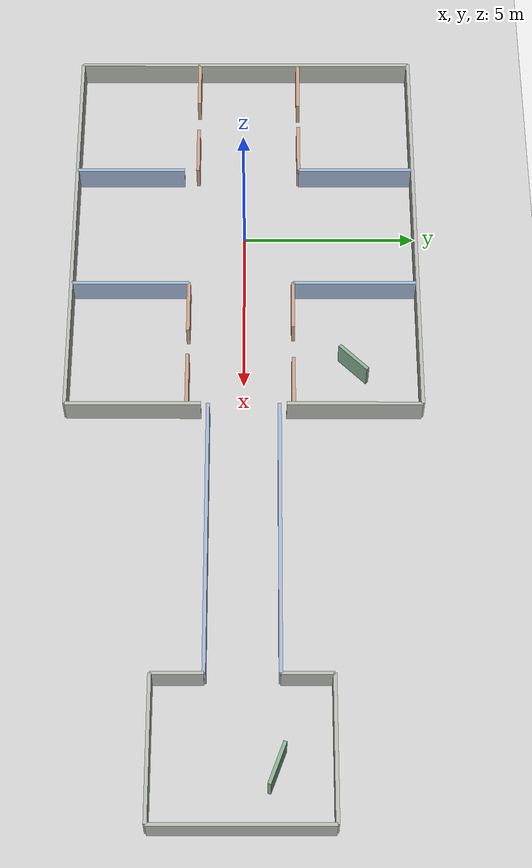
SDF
<?xml version="1.0" ?>
<sdf version="1.6">
  <world name="default">
    <gui>
      <camera name="user_camera">
        <pose>4 -15 16 0 0.9 1.5708</pose>
      </camera>
    </gui>

    <scene>
      <ambient>0.65 0.65 0.65 1</ambient>
      <background>0.55 0.58 0.62 1</background>
      <shadows>1</shadows>
      <grid>0</grid>
      <origin_visual>0</origin_visual>
    </scene>

    <include>
      <uri>model://ground_plane</uri>
    </include>

    <include>
      <uri>model://sun</uri>
    </include>

    <!-- Variant of slam_rooms with an east-side corridor and a small room at the end. -->
    <model name="slam_rooms_corridor_walls">
      <static>true</static>

      <link name="north_wall">
        <pose>0 5 0.4 0 0 0</pose>
        <collision name="collision"><geometry><box><size>12 0.1 0.8</size></box></geometry></collision>
        <visual name="visual"><geometry><box><size>12 0.1 0.8</size></box></geometry><material><ambient>0.70 0.72 0.68 1</ambient><diffuse>0.70 0.72 0.68 1</diffuse></material></visual>
      </link>
      <link name="south_wall">
        <pose>0 -5 0.4 0 0 0</pose>
        <collision name="collision"><geometry><box><size>12 0.1 0.8</size></box></geometry></collision>
        <visual name="visual"><geometry><box><size>12 0.1 0.8</size></box></geometry><material><ambient>0.70 0.72 0.68 1</ambient><diffuse>0.70 0.72 0.68 1</diffuse></material></visual>
      </link>
      <link name="east_wall_top">
        <pose>6 3.1 0.4 0 0 1.5708</pose>
        <collision name="collision"><geometry><box><size>3.8 0.1 0.8</size></box></geometry></collision>
        <visual name="visual"><geometry><box><size>3.8 0.1 0.8</size></box></geometry><material><ambient>0.70 0.72 0.68 1</ambient><diffuse>0.70 0.72 0.68 1</diffuse></material></visual>
      </link>
      <link name="east_wall_bottom">
        <pose>6 -3.1 0.4 0 0 1.5708</pose>
        <collision name="collision"><geometry><box><size>3.8 0.1 0.8</size></box></geometry></collision>
        <visual name="visual"><geometry><box><size>3.8 0.1 0.8</size></box></geometry><material><ambient>0.70 0.72 0.68 1</ambient><diffuse>0.70 0.72 0.68 1</diffuse></material></visual>
      </link>
      <link name="west_wall">
        <pose>-6 0 0.4 0 0 1.5708</pose>
        <collision name="collision"><geometry><box><size>10 0.1 0.8</size></box></geometry></collision>
        <visual name="visual"><geometry><box><size>10 0.1 0.8</size></box></geometry><material><ambient>0.70 0.72 0.68 1</ambient><diffuse>0.70 0.72 0.68 1</diffuse></material></visual>
      </link>

      <link name="left_vertical_top">
        <pose>-2 3.3 0.4 0 0 1.5708</pose>
        <collision name="collision"><geometry><box><size>3.4 0.1 0.8</size></box></geometry></collision>
        <visual name="visual"><geometry><box><size>3.4 0.1 0.8</size></box></geometry><material><ambient>0.62 0.70 0.82 1</ambient><diffuse>0.62 0.70 0.82 1</diffuse></material></visual>
      </link>
      <link name="left_vertical_bottom">
        <pose>-2 -3.4 0.4 0 0 1.5708</pose>
        <collision name="collision"><geometry><box><size>3.2 0.1 0.8</size></box></geometry></collision>
        <visual name="visual"><geometry><box><size>3.2 0.1 0.8</size></box></geometry><material><ambient>0.62 0.70 0.82 1</ambient><diffuse>0.62 0.70 0.82 1</diffuse></material></visual>
      </link>
      <link name="right_vertical_top">
        <pose>2 3.2 0.4 0 0 1.5708</pose>
        <collision name="collision"><geometry><box><size>3.6 0.1 0.8</size></box></geometry></collision>
        <visual name="visual"><geometry><box><size>3.6 0.1 0.8</size></box></geometry><material><ambient>0.62 0.70 0.82 1</ambient><diffuse>0.62 0.70 0.82 1</diffuse></material></visual>
      </link>
      <link name="right_vertical_bottom">
        <pose>2 -3.3 0.4 0 0 1.5708</pose>
        <collision name="collision"><geometry><box><size>3.4 0.1 0.8</size></box></geometry></collision>
        <visual name="visual"><geometry><box><size>3.4 0.1 0.8</size></box></geometry><material><ambient>0.62 0.70 0.82 1</ambient><diffuse>0.62 0.70 0.82 1</diffuse></material></visual>
      </link>

      <link name="upper_left_partition_west">
        <pose>-5.2 1.6 0.4 0 0 0</pose>
        <collision name="collision"><geometry><box><size>1.6 0.1 0.8</size></box></geometry></collision>
        <visual name="visual"><geometry><box><size>1.6 0.1 0.8</size></box></geometry><material><ambient>0.78 0.62 0.52 1</ambient><diffuse>0.78 0.62 0.52 1</diffuse></material></visual>
      </link>
      <link name="upper_left_partition_east">
        <pose>-2.8 1.6 0.4 0 0 0</pose>
        <collision name="collision"><geometry><box><size>1.6 0.1 0.8</size></box></geometry></collision>
        <visual name="visual"><geometry><box><size>1.6 0.1 0.8</size></box></geometry><material><ambient>0.78 0.62 0.52 1</ambient><diffuse>0.78 0.62 0.52 1</diffuse></material></visual>
      </link>
      <link name="lower_left_partition_west">
        <pose>-5.25 -1.4 0.4 0 0 0</pose>
        <collision name="collision"><geometry><box><size>1.5 0.1 0.8</size></box></geometry></collision>
        <visual name="visual"><geometry><box><size>1.5 0.1 0.8</size></box></geometry><material><ambient>0.78 0.62 0.52 1</ambient><diffuse>0.78 0.62 0.52 1</diffuse></material></visual>
      </link>
      <link name="lower_left_partition_east">
        <pose>-2.75 -1.4 0.4 0 0 0</pose>
        <collision name="collision"><geometry><box><size>1.5 0.1 0.8</size></box></geometry></collision>
        <visual name="visual"><geometry><box><size>1.5 0.1 0.8</size></box></geometry><material><ambient>0.78 0.62 0.52 1</ambient><diffuse>0.78 0.62 0.52 1</diffuse></material></visual>
      </link>
      <link name="upper_right_partition_west">
        <pose>2.75 1.4 0.4 0 0 0</pose>
        <collision name="collision"><geometry><box><size>1.5 0.1 0.8</size></box></geometry></collision>
        <visual name="visual"><geometry><box><size>1.5 0.1 0.8</size></box></geometry><material><ambient>0.78 0.62 0.52 1</ambient><diffuse>0.78 0.62 0.52 1</diffuse></material></visual>
      </link>
      <link name="upper_right_partition_east">
        <pose>5.25 1.4 0.4 0 0 0</pose>
        <collision name="collision"><geometry><box><size>1.5 0.1 0.8</size></box></geometry></collision>
        <visual name="visual"><geometry><box><size>1.5 0.1 0.8</size></box></geometry><material><ambient>0.78 0.62 0.52 1</ambient><diffuse>0.78 0.62 0.52 1</diffuse></material></visual>
      </link>
      <link name="lower_right_partition_west">
        <pose>2.8 -1.6 0.4 0 0 0</pose>
        <collision name="collision"><geometry><box><size>1.6 0.1 0.8</size></box></geometry></collision>
        <visual name="visual"><geometry><box><size>1.6 0.1 0.8</size></box></geometry><material><ambient>0.78 0.62 0.52 1</ambient><diffuse>0.78 0.62 0.52 1</diffuse></material></visual>
      </link>
      <link name="lower_right_partition_east">
        <pose>5.2 -1.6 0.4 0 0 0</pose>
        <collision name="collision"><geometry><box><size>1.6 0.1 0.8</size></box></geometry></collision>
        <visual name="visual"><geometry><box><size>1.6 0.1 0.8</size></box></geometry><material><ambient>0.78 0.62 0.52 1</ambient><diffuse>0.78 0.62 0.52 1</diffuse></material></visual>
      </link>

      <link name="short_landmark">
        <pose>4.5 3.1 0.4 0 0 0.7854</pose>
        <collision name="collision"><geometry><box><size>1.1 0.1 0.8</size></box></geometry></collision>
        <visual name="visual"><geometry><box><size>1.1 0.1 0.8</size></box></geometry><material><ambient>0.52 0.68 0.56 1</ambient><diffuse>0.52 0.68 0.56 1</diffuse></material></visual>
      </link>

      <link name="corridor_north_wall">
        <pose>10 1 0.4 0 0 0</pose>
        <collision name="collision"><geometry><box><size>8 0.1 0.8</size></box></geometry></collision>
        <visual name="visual"><geometry><box><size>8 0.1 0.8</size></box></geometry><material><ambient>0.62 0.70 0.82 1</ambient><diffuse>0.62 0.70 0.82 1</diffuse></material></visual>
      </link>
      <link name="corridor_south_wall">
        <pose>10 -1 0.4 0 0 0</pose>
        <collision name="collision"><geometry><box><size>8 0.1 0.8</size></box></geometry></collision>
        <visual name="visual"><geometry><box><size>8 0.1 0.8</size></box></geometry><material><ambient>0.62 0.70 0.82 1</ambient><diffuse>0.62 0.70 0.82 1</diffuse></material></visual>
      </link>

      <link name="end_room_north_wall">
        <pose>16 2.4 0.4 0 0 0</pose>
        <collision name="collision"><geometry><box><size>4 0.1 0.8</size></box></geometry></collision>
        <visual name="visual"><geometry><box><size>4 0.1 0.8</size></box></geometry><material><ambient>0.70 0.72 0.68 1</ambient><diffuse>0.70 0.72 0.68 1</diffuse></material></visual>
      </link>
      <link name="end_room_south_wall">
        <pose>16 -2.4 0.4 0 0 0</pose>
        <collision name="collision"><geometry><box><size>4 0.1 0.8</size></box></geometry></collision>
        <visual name="visual"><geometry><box><size>4 0.1 0.8</size></box></geometry><material><ambient>0.70 0.72 0.68 1</ambient><diffuse>0.70 0.72 0.68 1</diffuse></material></visual>
      </link>
      <link name="end_room_east_wall">
        <pose>18 0 0.4 0 0 1.5708</pose>
        <collision name="collision"><geometry><box><size>4.8 0.1 0.8</size></box></geometry></collision>
        <visual name="visual"><geometry><box><size>4.8 0.1 0.8</size></box></geometry><material><ambient>0.70 0.72 0.68 1</ambient><diffuse>0.70 0.72 0.68 1</diffuse></material></visual>
      </link>
      <link name="end_room_west_top">
        <pose>14 1.7 0.4 0 0 1.5708</pose>
        <collision name="collision"><geometry><box><size>1.4 0.1 0.8</size></box></geometry></collision>
        <visual name="visual"><geometry><box><size>1.4 0.1 0.8</size></box></geometry><material><ambient>0.70 0.72 0.68 1</ambient><diffuse>0.70 0.72 0.68 1</diffuse></material></visual>
      </link>
      <link name="end_room_west_bottom">
        <pose>14 -1.7 0.4 0 0 1.5708</pose>
        <collision name="collision"><geometry><box><size>1.4 0.1 0.8</size></box></geometry></collision>
        <visual name="visual"><geometry><box><size>1.4 0.1 0.8</size></box></geometry><material><ambient>0.70 0.72 0.68 1</ambient><diffuse>0.70 0.72 0.68 1</diffuse></material></visual>
      </link>

      <link name="end_room_landmark">
        <pose>16.4 0.9 0.4 0 0 -0.35</pose>
        <collision name="collision"><geometry><box><size>1.2 0.1 0.8</size></box></geometry></collision>
        <visual name="visual"><geometry><box><size>1.2 0.1 0.8</size></box></geometry><material><ambient>0.52 0.68 0.56 1</ambient><diffuse>0.52 0.68 0.56 1</diffuse></material></visual>
      </link>
    </model>
  </world>
</sdf>
